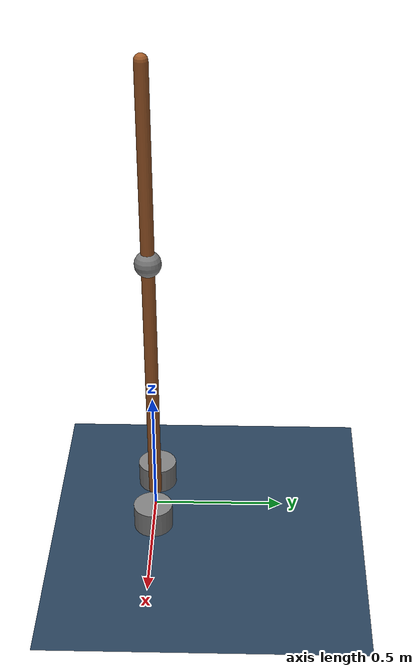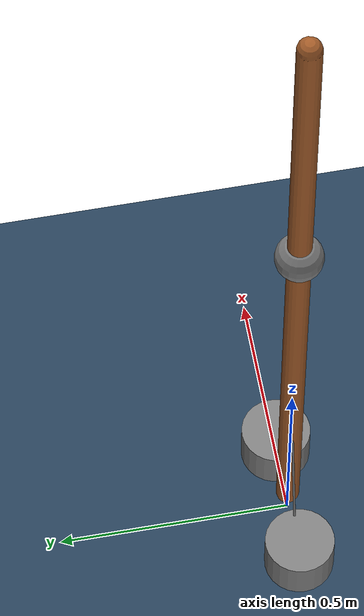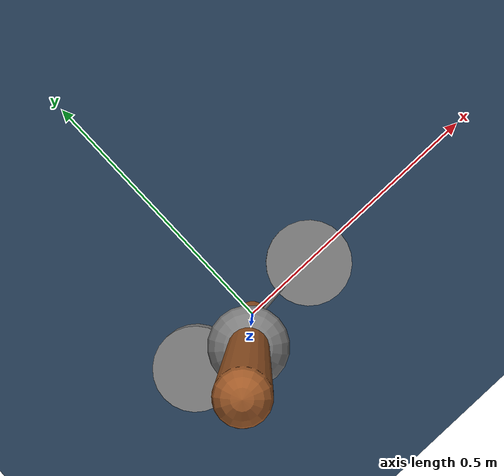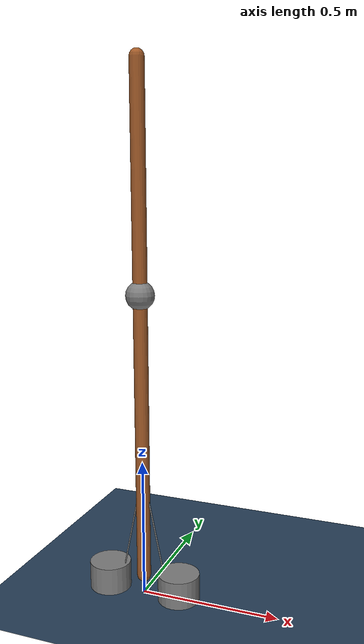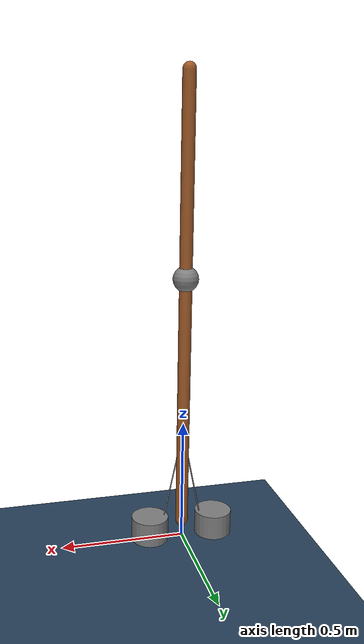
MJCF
<mujoco model="initial_humanoid">

  <option gravity="0 0 -9.81">

    <flag sensornoise="enable" />
  </option>

  <visual>
    <map zfar="30" />

    <rgba haze="0.15 0.25 0.35 1" />

  </visual>

  <statistic center="0 0 0.7" />

  <asset>

    <texture type="skybox" builtin="gradient" rgb1=".3 .5 .7" rgb2="0 0 0" width="32" height="512" />

    <texture name="body" type="cube" builtin="flat" mark="cross" width="128" height="128" rgb1="0.8 0.6 0.4" rgb2="0.8 0.6 0.4" markrgb="1 1 1" random="0.01" />
    <material name="body" texture="body" texuniform="true" rgba="0.8 0.6 .4 1" />

    <texture name="grid" type="2d" builtin="checker" width="512" height="512" rgb1=".1 .2 .3" rgb2=".2 .3 .4" />
    <material name="grid" texture="grid" texrepeat="1 1" texuniform="true" reflectance=".2" />

    <mesh name="foot_mesh" vertex="-0.13528 -0.035 0   -0.13528 0.035 0   0.13528 -0.035 0   0.13528 0.035 0  0 -0.035 0.06942 0 0.035 0.06942" />
  </asset>

  <default>

    <default class="body">

      <geom type="capsule" mass="10" condim="1" friction="0.7 0.005 0.0001" solimp=".9 .99 .003" solref=".015 1" material="body" group="1" />

      <default class="shin">
        <geom fromto="0 0 0.1 0 0 0" size="0.025" />
      </default>

    </default>
  </default>

	<worldbody>

      <geom name="ground" size="0 0 .05" type="plane" material="grid" condim="3" friction="0.99 0.99 0.99" solimp=".9 .99 .003" solref=".015 1" />

      <light name="spotlight" mode="targetbodycom" target="foot" diffuse=".8 .8 .8" specular="0.3 0.3 0.3" pos="0 -6 4" cutoff="30" />

        <body name="foot" pos="0 0 0.00">

          <joint name="rotation_dof" type="hinge" axis="0 -1 0" pos="-0.27056 0 0.035" />
          <joint type="slide" name="joint_slide_x" axis="-1 0 0" pos="0.13528 0 0.035" />
          <joint type="slide" name="joint_slide_z" axis="0 0 1" pos="0.13528 0 0.035" />

          <geom type="mesh" mesh="foot_mesh" name="foot_geom" solref=".015 1" solimp=".9 .99 .003" rgba="0.8 0.6 .4 0" />

          <site name="front_foot_force_sensor_site" type="cylinder" size="0.075" rgba="0.5 0.5 0.5 1" fromto="-0.13528 0 0.0 -0.13528 0 0.1" />
          <site name="back_foot_force_sensor_site" type="cylinder" size="0.075" rgba="0.5 0.5 0.5 1" fromto="0.13528 0 0.0 0.13528 0 0.1" />

          <site name="front_foot_site" pos="-0.09018666666666668 0 0.025" size="0.01 0.01 0.01" />
          <site name="back_foot_site" pos="0.09018666666666668 0 0.025" size="0.01 0.01 0.01" />

          <body name="shin_body" pos="0 0 0.06942">

            <joint type="hinge" name="ankle_hinge" axis="0 -1 0" damping="1" pos="0 0 0" />
            <geom name="shin_geom" class="shin" mass="0" fromto="0 0 1.78 0 0 0" />
            <geom name="m_body" type="sphere" size="0.05" pos="0 0 1.0234999999999999" mass="77.68" />
            <site name="front_shin_site" pos="-0.01 0 0.34709999999999996" size="0.01 0.01 0.01" />
            <site name="back_shin_site" pos="0.01 0 0.34709999999999996" size="0.01 0.01 0.01" />

          </body>

        </body>

	</worldbody>

  <tendon>
    <spatial name="front_tendon" limited="true" range="0.1 0.7" width="0.0025" springlength="-1" stiffness="1">
      <site site="front_foot_site" />
      <site site="front_shin_site" />
    </spatial>
  </tendon>

  <tendon>
    <spatial name="back_tendon" limited="true" range="0.1 0.7" width="0.0025" springlength="-1" stiffness="1">
      <site site="back_foot_site" />
      <site site="back_shin_site" />
    </spatial>
  </tendon>

  <contact>

    <pair name="foot_ground_friction" geom1="foot_geom" geom2="ground" solref="0.015 1" solimp="0.99 .99 .003" friction="0.9 0.9 0.99 0.9 0.9" />
    <pair name="longlink_ground_friction" geom1="shin_geom" geom2="ground" solref="0.015 1" solimp="0.99 .99 .003" friction=".99 .99 .99" />
  </contact>

	<actuator>
      <muscle name="front_muscle" tendon="front_tendon" force="1200" />
      <muscle name="back_muscle" tendon="back_tendon" force="1200" />
  </actuator>

	<sensor>
      <jointpos joint="ankle_hinge" />
      <touch site="front_foot_force_sensor_site" />
      <touch site="back_foot_force_sensor_site" />
	</sensor>

</mujoco>
